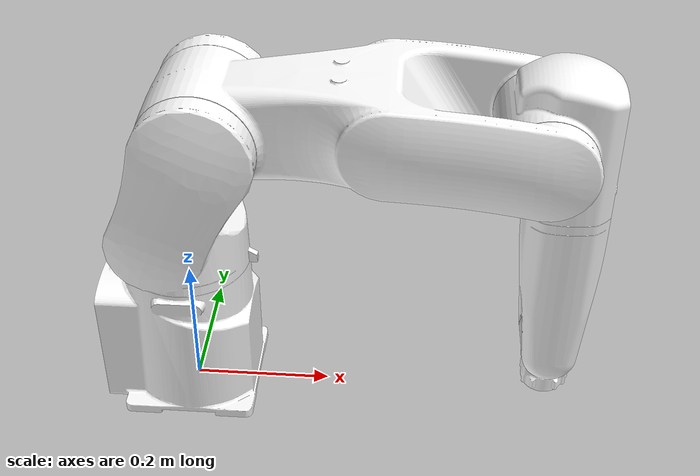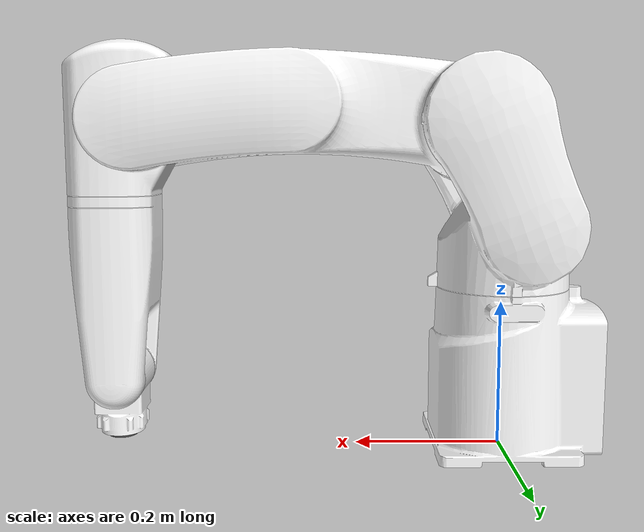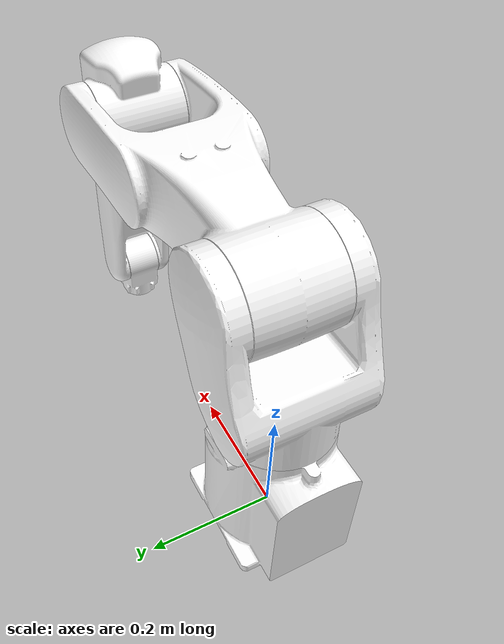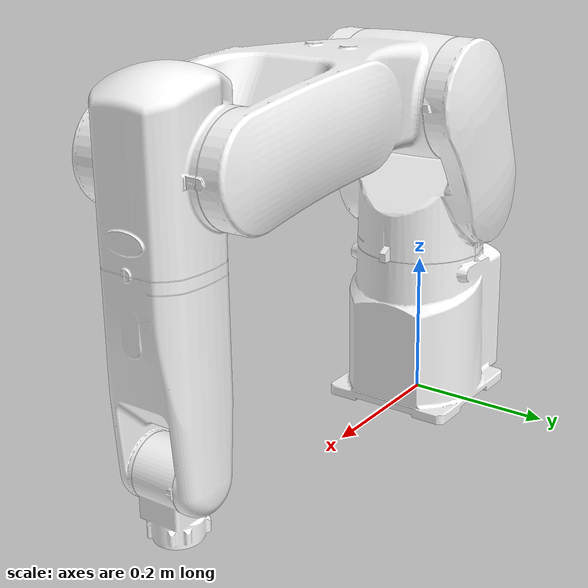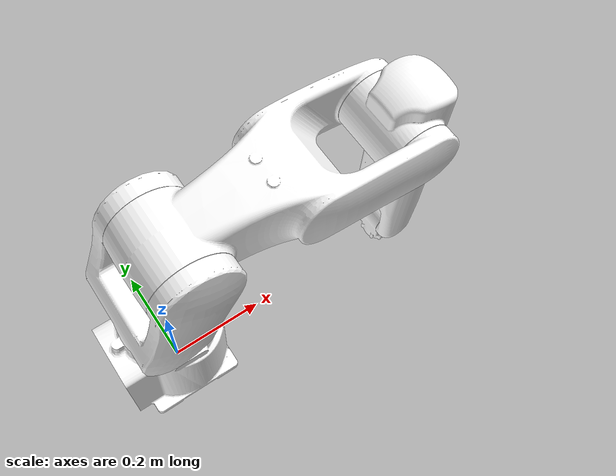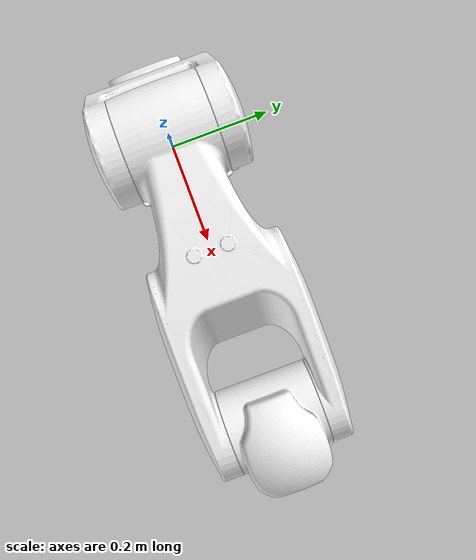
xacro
<?xml version="1.0"?>
<robot name="hdr_robot" xmlns:xacro="http://ros.org/wiki/xacro">
  <material name="white">
    <color rgba="1.0 1.0 1.0 1.0"/>
  </material>
  <material name="gray">
    <color rgba="0.3 0.3 0.3 1.0"/>
  </material>
  <xacro:property name="mesh_scale" value="0.001" />
  <link name="base_link">
    <visual>
      <geometry>
        <mesh filename="file://$(find hdr_description)/meshes/robots/hdf8_8/visual/base_body.stl" scale="${mesh_scale} ${mesh_scale} ${mesh_scale}"/>
      </geometry>
      <material name="white"/>
    </visual>
    <collision>
      <geometry>
        <mesh filename="file://$(find hdr_description)/meshes/robots/hdf8_8/collision/base_body.stl" scale="${mesh_scale} ${mesh_scale} ${mesh_scale}"/>
      </geometry>
    </collision>
    <inertial>
      <mass value="31.2543"/>
      <origin xyz="0 0 0" rpy="0 0 0"/>
      <inertia ixx="0.2232" ixy="0" ixz="0" iyy="0.255" iyz="0" izz="0.2208"/>
    </inertial>
  </link>
  <link name="lower_frame_link">
    <visual>
      <geometry>
        <mesh filename="file://$(find hdr_description)/meshes/robots/hdf8_8/visual/lower_frame.stl" scale="${mesh_scale} ${mesh_scale} ${mesh_scale}"/>
      </geometry>
      <material name="white"/>
    </visual>
    <collision>
      <geometry>
        <mesh filename="file://$(find hdr_description)/meshes/robots/hdf8_8/collision/lower_frame.stl" scale="${mesh_scale} ${mesh_scale} ${mesh_scale}"/>
      </geometry>
    </collision>
    <inertial>
      <mass value="44.2299"/>
      <origin xyz="0 0 0" rpy="0 0 0"/>
      <inertia ixx="0.5561" ixy="0" ixz="0" iyy="0.5181" iyz="0" izz="0.3677" />
    </inertial>
  </link>
  <link name="upper_frame_link">
    <visual>
      <origin xyz="0 0 0" rpy="0 1.5708 0"/>
      <geometry>
        <mesh filename="file://$(find hdr_description)/meshes/robots/hdf8_8/visual/upper_frame.stl" scale="${mesh_scale} ${mesh_scale} ${mesh_scale}"/>
      </geometry>
      <material name="white"/>
    </visual>
    <collision>
      <origin xyz="0 0 0" rpy="0 1.5708 0"/>
      <geometry>
        <mesh filename="file://$(find hdr_description)/meshes/robots/hdf8_8/collision/upper_frame.stl" scale="${mesh_scale} ${mesh_scale} ${mesh_scale}"/>
      </geometry>
    </collision>
    <inertial>
      <mass value="22.4028"/>
      <origin xyz="0 0 0" rpy="0 1.5708 0"/>
      <inertia ixx="0.1485" ixy="0" ixz="0" iyy="0.7105" iyz="0" izz="0.7511" />
    </inertial>
  </link>
  <link name="arm_link">
    <visual>
      <geometry>
        <mesh filename="file://$(find hdr_description)/meshes/robots/hdf8_8/visual/arm.stl" scale="${mesh_scale} ${mesh_scale} ${mesh_scale}"/>
      </geometry>
      <material name="white"/>
    </visual>
    <collision>
      <geometry>
        <mesh filename="file://$(find hdr_description)/meshes/robots/hdf8_8/collision/arm.stl" scale="${mesh_scale} ${mesh_scale} ${mesh_scale}"/>
      </geometry>
    </collision>
    <inertial>
      <mass value="14.2656"/>
      <origin xyz="0 0 0" rpy="0 0 0"/>
      <inertia ixx="0.0538" ixy="0" ixz="0" iyy="0.0804" iyz="0" izz="0.07186" />
    </inertial>
  </link>
  <link name="wrist_body_link">
    <visual>
      <origin xyz="-0.04 0 0" rpy="0 0 0"/>
      <geometry>
        <mesh filename="file://$(find hdr_description)/meshes/robots/hdf8_8/visual/wrist_body.stl" scale="${mesh_scale} ${mesh_scale} ${mesh_scale}"/>
      </geometry>
      <material name="white"/>
    </visual>
    <collision>
      <origin xyz="-0.04 0 0" rpy="0 0 0"/>
      <geometry>
        <mesh filename="file://$(find hdr_description)/meshes/robots/hdf8_8/collision/wrist_body.stl" scale="${mesh_scale} ${mesh_scale} ${mesh_scale}"/>
      </geometry>
    </collision>
    <inertial>
      <mass value="7.0632"/>
      <origin xyz="0 0 0" rpy="0 0 0"/>
      <inertia ixx="0.01598" ixy="0" ixz="0" iyy="0.0557" iyz="0" izz="0.0566" />
    </inertial>
  </link>
  <link name="wrist_holder_link">
    <visual>
      <geometry>
        <mesh filename="file://$(find hdr_description)/meshes/robots/hdf8_8/visual/wrist_holder.stl" scale="${mesh_scale} ${mesh_scale} ${mesh_scale}"/>
      </geometry>
      <material name="white"/>
    </visual>
    <collision>
      <geometry>
        <mesh filename="file://$(find hdr_description)/meshes/robots/hdf8_8/collision/wrist_holder.stl" scale="${mesh_scale} ${mesh_scale} ${mesh_scale}"/>
      </geometry>
    </collision>
    <inertial>
      <mass value="3.8171"/>
      <origin xyz="0 0 0" rpy="0 0 0"/>
      <inertia ixx="0.0034" ixy="0" ixz="0" iyy="0.0066" iyz="0" izz="0.0059" />
    </inertial>
  </link>
  <link name="flange_link">
    <visual>
      <geometry>
        <mesh filename="file://$(find hdr_description)/meshes/robots/hdf8_8/visual/flange.stl" scale="${mesh_scale} ${mesh_scale} ${mesh_scale}"/>
      </geometry>
      <material name="gray"/>
    </visual>
    <collision>
      <geometry>
        <mesh filename="file://$(find hdr_description)/meshes/robots/hdf8_8/collision/flange.stl" scale="${mesh_scale} ${mesh_scale} ${mesh_scale}"/>
      </geometry>
    </collision>
    <inertial>
      <mass value="0.4672"/>
      <origin xyz="0 0 0" rpy="0 0 0"/>
      <inertia ixx="0.0001" ixy="0" ixz="0" iyy="0.0001" iyz="0" izz="0.0001"/>
    </inertial>
  </link>

  <joint name="j1" type="revolute">
    <parent link="base_link"/>
    <child link="lower_frame_link"/>
    <origin xyz="0 0 0" rpy="0 0 0"/>
    <axis xyz="0 0 1"/>
    <limit lower="-2.967" upper="2.967" effort="138.6" velocity="7.941"/>
  </joint>
  <joint name="j2" type="revolute">
    <parent link="lower_frame_link"/>
    <child link="upper_frame_link"/>
    <origin xyz="0.04 0 0.446" rpy="0 1.5708 0"/>
    <axis xyz="0 -1 0"/>
    <limit lower="-0.96" upper="3.14" effort="162.9" velocity="6.719"/>
  </joint>
  <joint name="j3" type="revolute">
    <parent link="upper_frame_link"/>
    <child link="arm_link"/>
    <origin xyz="0 0 0.445" rpy="0 0 0"/>
    <axis xyz="0 -1 0"/>
    <limit lower="-1.22" upper="3.71" effort="81.3" velocity="9.075"/>
  </joint>
  <joint name="j4" type="revolute">
    <parent link="arm_link"/>
    <child link="wrist_body_link"/>
    <origin xyz="0 0 0.04" rpy="0 0 0"/>
    <axis xyz="1 0 0"/>
    <limit lower="-3.316" upper="3.316" effort="19.1" velocity="9.599"/>
  </joint>
  <joint name="j5" type="revolute">
    <parent link="wrist_body_link"/>
    <child link="wrist_holder_link"/>
    <origin xyz="0.345 0 0" rpy="0 0 0"/>
    <axis xyz="0 -1 0"/>
    <limit lower="-2.356" upper="2.356" effort="16.3" velocity="9.599"/>
  </joint>
  <joint name="j6" type="revolute">
    <parent link="wrist_holder_link"/>
    <child link="flange_link"/>
    <origin xyz="0.0865 0 0" rpy="0 0 0"/>
    <axis xyz="1 0 0"/>
    <limit lower="-6.283" upper="6.283" effort="10.4" velocity="17.453"/>
  </joint>

  <link name="base"/>
  <joint name="base_link-base" type="fixed">
    <origin xyz="0 0 0" rpy="0 0 0"/>
    <parent link="base_link"/>
    <child link="base"/>
  </joint>
  <link name="flange"/>
  <joint name="flange_link-flange" type="fixed">
    <origin xyz="0 0 0" rpy="0 0 0"/>
    <parent link="flange_link"/>
    <child link="flange"/>
  </joint>
  <link name="tool0"/>
  <joint name="flange-tool0" type="fixed">
    <origin xyz="0 0 0" rpy="0 1.5708 0"/>
    <parent link="flange"/>
    <child link="tool0"/>
  </joint>

  <link name="world"/>
  <joint name="world_joint" type="fixed">
    <parent link="world"/>
    <child link="base_link"/>
    <origin xyz="0 0 0" rpy="0 0 0"/>
  </joint>

</robot>
